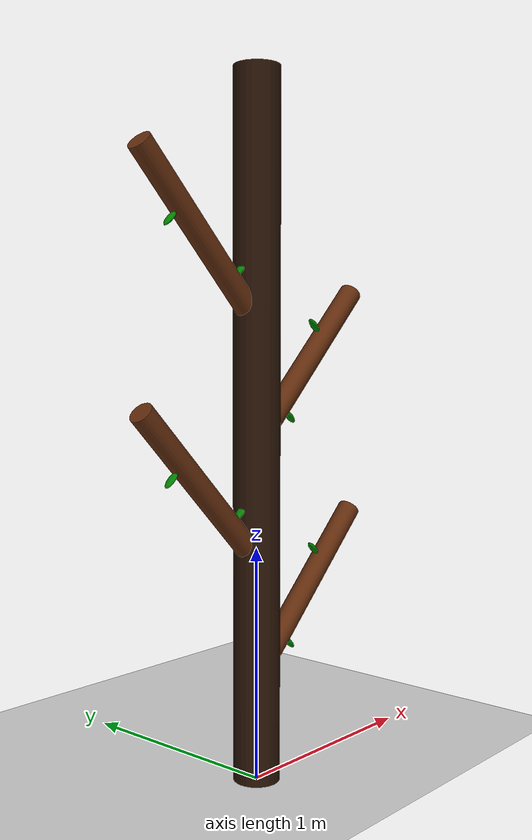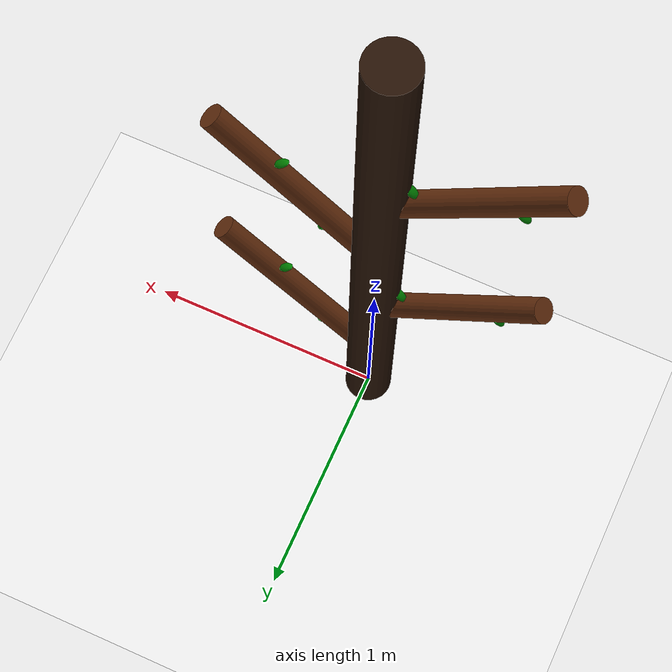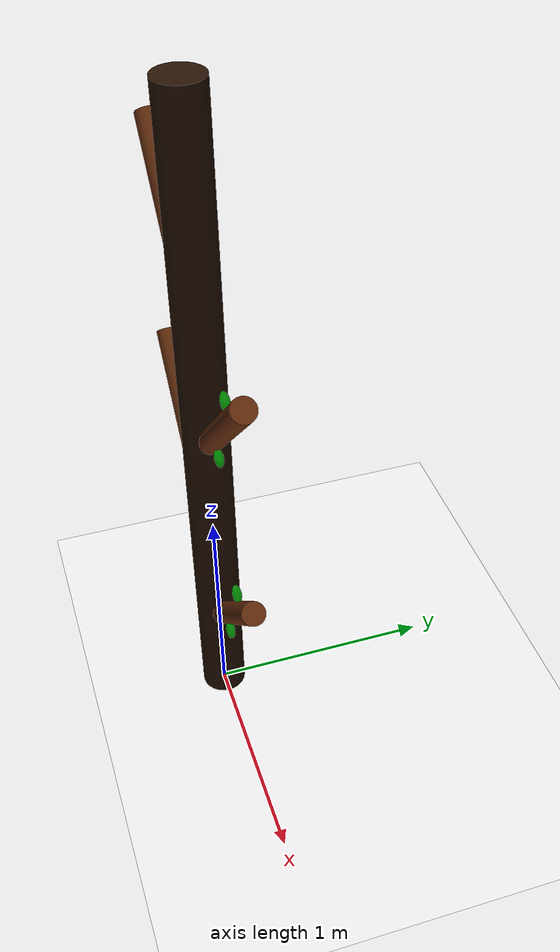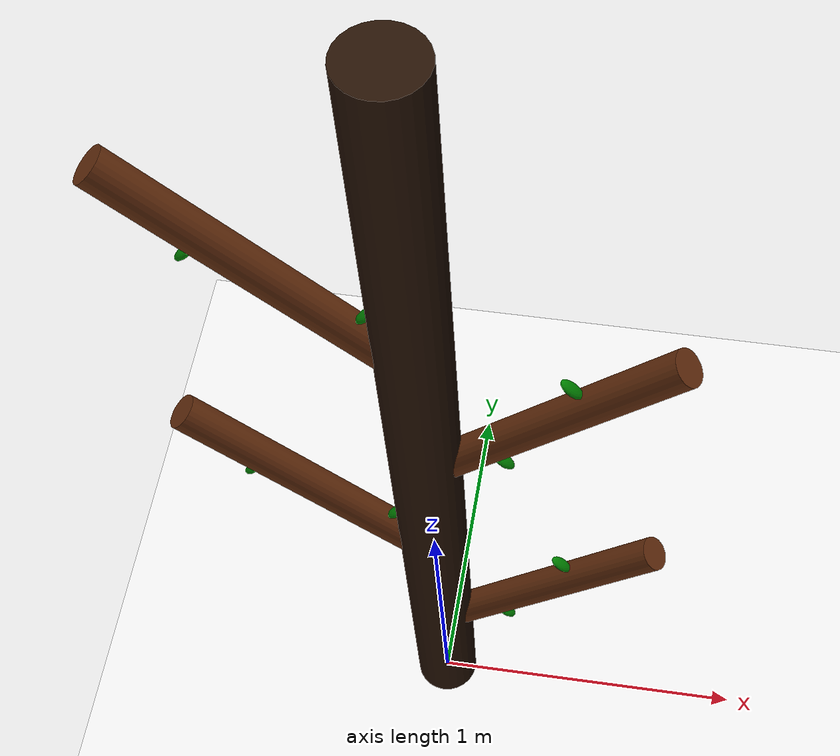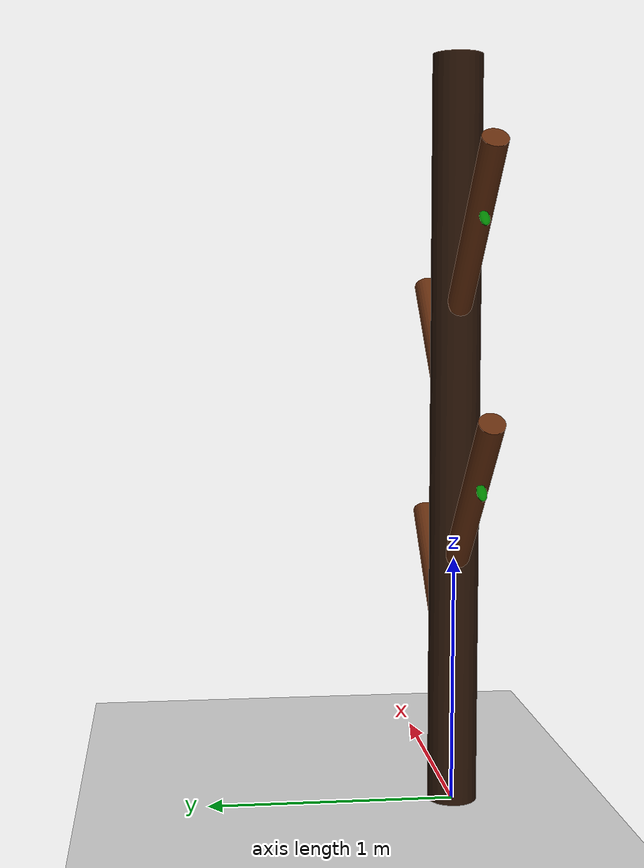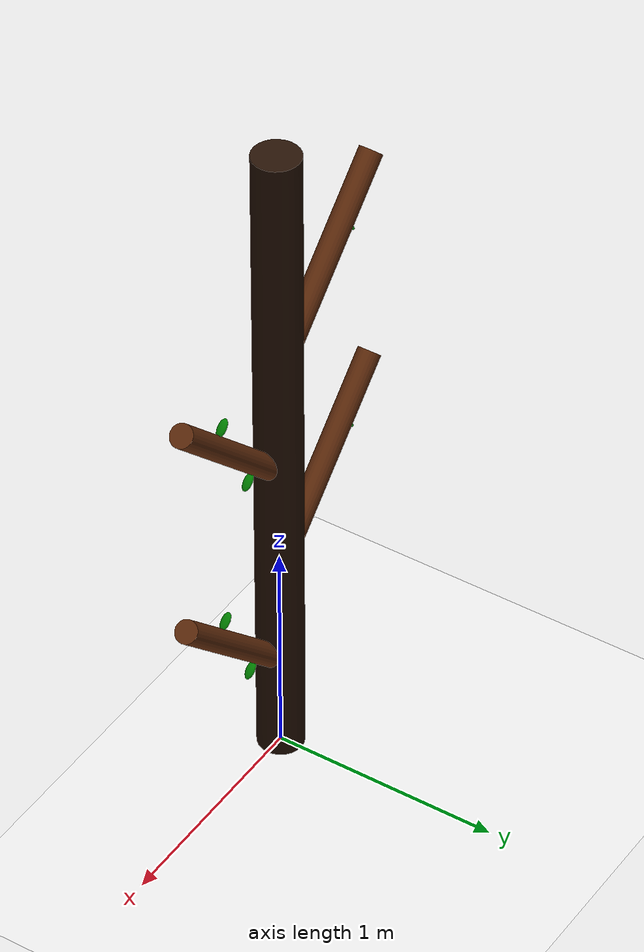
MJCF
<mujoco>
    <worldbody>
    	<light diffuse=".5 .5 .5" pos="0 0 3" dir="0 0 -1"/>
    	<geom type="plane" size="5 5 0.1" rgba=".9 0.9 0.9 1"/>

        <body name = "trunk" pos="0 0 1.5">
 			<joint type="free"/>
 			<geom type="cylinder" size=".1 1.5" rgba=".15 .07 .02 1" mass ="1000"/>

            <body name = "leftbranch1" pos=".3 0 -0.75" euler='0 45 0'>
     			<geom type="cylinder" size=".05 0.5" rgba=".38 .17 .05 1"/>

     			<body name="leaf1" pos=".08 0 -.2">
                    <joint name="leaf1_joint" type="hinge" axis="0 1 0" pos="0 0 0" range="-5 5"/>
                    <geom type="ellipsoid" size=".04 .02 .01" rgba="0 .5 0 1"/>
                </body>
                <body name="leaf2" pos="-.08 0 .2">
                   <joint name="leaf2_joint" type="hinge" axis="0 1 0" pos="0 0 0" range="-5 5"/>
                   <geom type="ellipsoid" size=".04 .02 .01" rgba="0 .5 0 1"/>
               </body>

    		</body>

    		<body name = "rightbranch1" pos="-.3 0 -0.25" euler='0 -45 0'>
     			<geom type="cylinder" size=".05 0.5" rgba=".38 .17 .05 1"/>

         		<body name="leaf3" pos=".08 0 -.2">
                    <joint name="leaf3_joint" type="hinge" axis="0 1 0" pos="0 0 0" range="-5 5"/>
                    <geom type="ellipsoid" size=".04 .02 .01" rgba="0 .5 0 1"/>
                </body>
                <body name="leaf4" pos="-.08 0 .2">
                   <joint name="leaf4_joint" type="hinge" axis="0 1 0" pos="0 0 0" range="-5 5"/>
                   <geom type="ellipsoid" size=".04 .02 .01" rgba="0 .5 0 1"/>
               </body>

    		</body>

    		<body name = "leftbranch2" pos=".3 0 0.25" euler='0 45 0'>
     			<geom type="cylinder" size=".05 0.5" rgba=".38 .17 .05 1"/>

     			<body name="leaf5" pos=".08 0 -.2">
                    <joint name="leaf5_joint" type="hinge" axis="0 1 0" pos="0 0 0" range="-5 5"/>
                    <geom type="ellipsoid" size=".04 .02 .01" rgba="0 .5 0 1"/>
                </body>
                <body name="leaf6" pos="-.08 0 .2">
                   <joint name="leaf6_joint" type="hinge" axis="0 1 0" pos="0 0 0" range="-5 5"/>
                   <geom type="ellipsoid" size=".04 .02 .01" rgba="0 .5 0 1"/>
               </body>

    		</body>

    		<body name = "rightbranch2" pos="-.3 0 0.75" euler='0 -45 0'>
     			<geom type="cylinder" size=".05 0.5" rgba=".38 .17 .05 1"/>

     			<body name="leaf7" pos=".08 0 -.2">
                    <joint name="leaf7_joint" type="hinge" axis="0 1 0" pos="0 0 0" range="-5 5"/>
                    <geom type="ellipsoid" size=".04 .02 .01" rgba="0 .5 0 1"/>
                </body>
                <body name="leaf8" pos="-.08 0 .2">
                   <joint name="leaf8_joint" type="hinge" axis="0 1 0" pos="0 0 0" range="-5 5"/>
                   <geom type="ellipsoid" size=".04 .02 .01" rgba="0 .5 0 1"/>
               </body>

    		</body>

        </body>

    </worldbody>

    <actuator>
        <motor name="leaf1_motor" joint="leaf1_joint" gear="0.02"/>
        <motor name="leaf2_motor" joint="leaf2_joint" gear="0.02"/>
        <motor name="leaf3_motor" joint="leaf3_joint" gear="0.02"/>
        <motor name="leaf4_motor" joint="leaf4_joint" gear="0.02"/>
        <motor name="leaf5_motor" joint="leaf5_joint" gear="0.02"/>
        <motor name="leaf6_motor" joint="leaf6_joint" gear="0.02"/>
        <motor name="leaf7_motor" joint="leaf7_joint" gear="0.02"/>
        <motor name="leaf8_motor" joint="leaf8_joint" gear="0.02"/>

    </actuator>

</mujoco>
